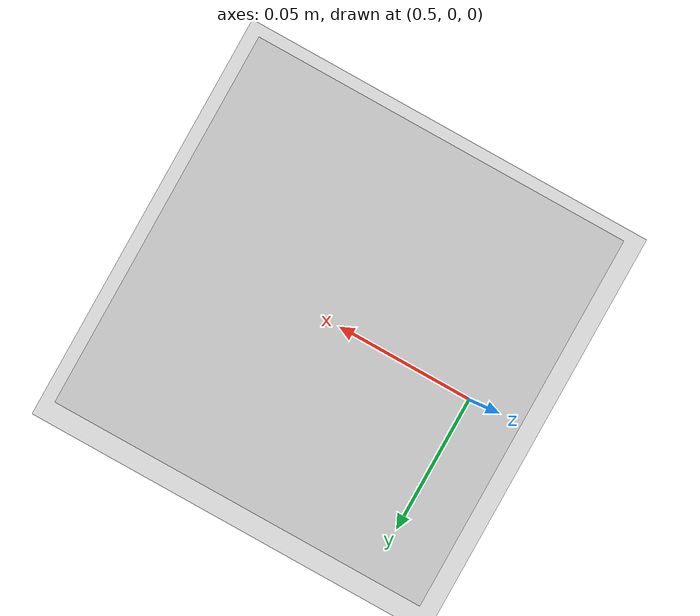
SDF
<?xml version="1.0" ?>
<sdf version="1.6">
   <world name="default">
      <include>
         <uri>model://ground_plane</uri>
      </include>
      <include>
         <uri>model://sun</uri>
      </include>

      <include>
         <uri>model://marker0</uri>
          <pose>0.5 0 0.05 0 1.5708 0</pose>
      </include>
   </world>
</sdf>

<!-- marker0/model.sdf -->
<sdf version="1.6">
  <model name="Marker0">
    <static>true</static>
    <link name="link">
      <inertial>
        <inertia>
          <ixx>0.005</ixx>
          <ixy>0</ixy>
          <ixz>0</ixz>
          <iyy>0.005</iyy>
          <iyz>0</iyz>
          <izz>0.005</izz>
        </inertia>
        <mass>1</mass>
      </inertial>
      <collision name="collision">
        <geometry>
          <mesh>
            <uri>model://marker0/meshes/Marker0.dae</uri>
            <scale>5.2 0.2 0.2</scale>
          </mesh>
        </geometry>
      </collision>
      <visual name="visual">
        <geometry>
          <mesh>
            <uri>model://marker0/meshes/Marker0.dae</uri>
            <scale>5.2 0.2 0.2</scale>
          </mesh>
        </geometry>
      </visual>
    </link>
  </model>
</sdf>
